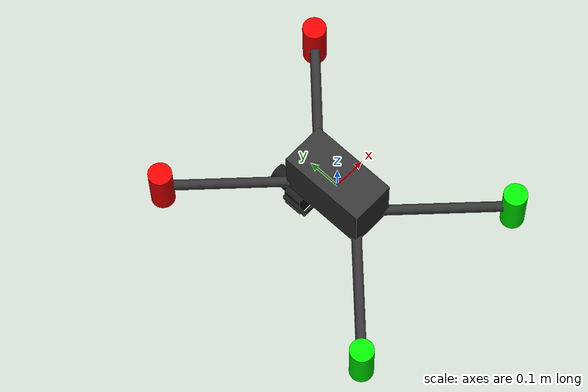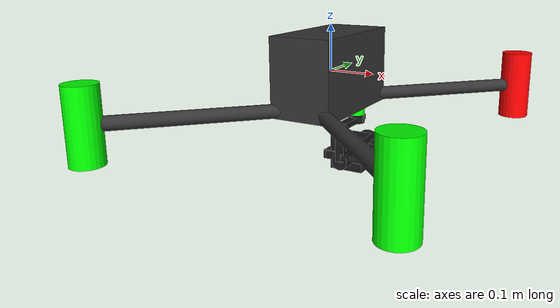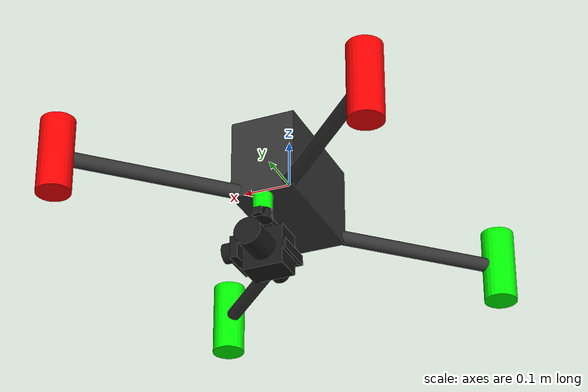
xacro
<?xml version="1.0"?>
<robot name="drone" xmlns:xacro="http://ros.org/wiki/xacro">

  <xacro:property name="namespace" value="mavdrone" />

  <!-- Define robot constants -->
  <xacro:property name="arm_length" value="0.45" />
  <xacro:property name="arm_radius" value="0.015" />
  <xacro:property name="prop_radius" value="0.035" />

  <xacro:property name="base_length" value="0.27" />
  <xacro:property name="base_width" value="0.135" />
  <xacro:property name="base_height" value="0.17" />

  <xacro:property name="skyport_mount_radius" value="0.02" />
  <xacro:property name="skyport_mount_length" value="0.036" />

  <!-- Robot Base -->
  <link name="base_link">
    <visual>
      <origin xyz="0 0 0" rpy="0 0 ${pi/2}" />
      <geometry>
        <box size="${base_length} ${base_width} ${base_height}" />
      </geometry>
      <material name="base">
        <color rgba="0.2 0.2 0.2 1" />
      </material>
    </visual>

    <collision>
      <origin xyz="0 0 0" rpy="0 0 ${pi/2}" />
      <geometry>
        <box size="${base_length} ${base_width} ${base_height}" />
      </geometry>
    </collision>
  </link>

  <!-- Arms -->
  <xacro:macro name="arm" params="prefix color arm_angle offset">
    <joint name="${prefix}_joint" type="fixed">
      <parent link="base_link" />
      <child link="${prefix}_link" />
      <origin xyz="0.0 ${offset} ${arm_radius-(base_height/2)}" rpy="0 0 ${arm_angle+pi/4}" />
    </joint>

    <link name="${prefix}_link">
      <visual>
        <origin xyz="${arm_length/2} 0 0" rpy="${pi/2} 0 ${pi/2}" />
        <geometry>
          <cylinder radius="${arm_radius}" length="${arm_length}" />
        </geometry>

        <material name="black">
          <color rgba="0.2 0.2 0.2 1" />
        </material>
      </visual>

      <collision>
        <origin xyz="${arm_length/2} 0 0" rpy="${pi/2} 0 ${pi/2}" />
        <geometry>
          <cylinder radius="${arm_radius}" length="${arm_length}" />
        </geometry>
      </collision>
    </link>

    <joint name="${prefix}_motor_joint" type="fixed">
      <parent link="${prefix}_link" />
      <child link="${prefix}_motor_link" />
      <origin xyz="${arm_length} 0.0 0.0" rpy="0 0 0" />
    </joint>

    <link name="${prefix}_motor_link">
      <visual>
        <origin xyz="0 0 0" rpy="0 0 0" />
        <geometry>
          <cylinder radius="${prop_radius}" length="0.16" />
        </geometry>
        <material name="${prefix}_color">
          <color rgba="${color}" />
        </material>
      </visual>
      <collision>
        <origin xyz="0 0 0" rpy="0 0 0" />
        <geometry>
          <cylinder radius="${prop_radius}" length="0.16" />
        </geometry>
      </collision>
    </link>
  </xacro:macro>

  <xacro:arm prefix="arm1" color="1.0 0.0 0.0 1.0" arm_angle="0" offset="0.07" />
  <xacro:arm prefix="arm3" color="1.0 0.0 0.0 1.0" arm_angle="${pi/2}" offset="0.07" />
  <xacro:arm prefix="arm4" color="0.0 1.0 0.0 1.0" arm_angle="${pi}" offset="-0.07" />
  <xacro:arm prefix="arm2" color="0.0 1.0 0.0 1.0" arm_angle="${3*pi/2}" offset="-0.07" />

  <link name="skyport_mount_link">
    <visual>
      <origin xyz="0 0 0" rpy="0 0 0" />
      <geometry>
        <cylinder radius="${skyport_mount_radius}" length="${skyport_mount_length}" />
      </geometry>
      <material name="skyport_mount_color">
        <color rgba="0 1 0 1.0" />
      </material>
    </visual>
    <collision>
      <origin xyz="0 0 0" rpy="0 0 0" />
      <geometry>
        <cylinder radius="${skyport_mount_radius}" length="${skyport_mount_length}" />
      </geometry>
    </collision>
  </link>

  <joint name="skyport_mount_joint" type="fixed">
    <parent link="base_link" />
    <child link="skyport_mount_link" />
    <origin xyz="0.0 0.13 ${-(base_height/2)-(skyport_mount_length/2)-0.008}" rpy="0 0 0" />
  </joint>

  <xacro:include filename="$(find m350_description)/urdf/p1.urdf.xacro" />
  <xacro:p1 parent="skyport_mount_link" xyz="0 0 -${skyport_mount_length/2}" rpy="0 0 0" />
</robot>

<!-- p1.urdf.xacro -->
<robot xmlns:xacro="http://www.ros.org/wiki/xacro">
    <xacro:property name="motor_radius" value="0.02" />
    <xacro:property name="skyport_length" value="0.018" />
    <xacro:property name="motor_length" value="0.02" />
    <xacro:property name="motor_length_short" value="0.016" />
    <xacro:property name="frame_1_length" value="0.120" />
    <xacro:property name="frame_1_width" value="0.02" />
    <xacro:property name="frame_1_height" value="0.014" />
    <xacro:property name="frame_2_length" value="0.09" />
    <xacro:property name="frame_3_length" value="0.122" />
    <xacro:property name="frame_3_width" value="0.006" />
    <xacro:property name="frame_3_height" value="0.02" />
    <xacro:property name="frame_4_length" value="0.085" />
    <xacro:property name="square_motor_size" value="0.046" />
    <xacro:property name="camera_sensor_width" value="0.084" />
    <xacro:property name="camera_sensor_height" value="0.084" />
    <xacro:property name="camera_sensor_length" value="0.06" />
    <xacro:property name="camera_lens_radius" value="0.028" />
    <xacro:property name="camera_lens_length" value="0.07" />

    <material name="camera_body_color">
        <color rgba="0.1 0.1 0.1 1" />
    </material>

    <xacro:macro name="p1" params="parent xyz rpy">
        <link name="skyport_link" />

        <joint name="skyport_joint" type="fixed">
            <origin xyz="${xyz}" rpy="${rpy}" />
            <parent link="${parent}" />
            <child link="skyport_link" />
        </joint>

        <link name="yaw_motor_link">
            <visual>
                <origin xyz="0 0 ${skyport_length/2}" rpy="0 0 0" />
                <geometry>
                    <cylinder radius="${motor_radius}" length="${skyport_length}" />
                </geometry>
                <material name="camera_body_color" />
            </visual>

        </link>

        <joint name="yaw_motor_joint" type="fixed">
            <origin xyz="0 0 -${skyport_length}" rpy="0 0 0" />
            <parent link="skyport_link" />
            <child link="yaw_motor_link" />
        </joint>

        <link name="yaw_link">
            <visual>
                <origin xyz="0 0 -${motor_length/2}" rpy="0 0 0" />
                <geometry>
                    <cylinder radius="${motor_radius}" length="${motor_length}" />
                </geometry>
                <material name="camera_body_color" />
            </visual>
        </link>

        <joint name="yaw_joint" type="continuous">
            <parent link="skyport_link" />
            <child link="yaw_link" />
            <axis xyz="0 0 -1" />
        </joint>

        <link name="frame_1">
            <visual>
                <origin xyz="0 0 0" rpy="0 0 0" />
                <geometry>
                    <box size="${frame_1_width} ${frame_1_length} ${frame_1_height}" />
                </geometry>
                <material name="camera_body_color" />
            </visual>
        </link>

        <joint name="frame_1_joint" type="fixed">
            <parent link="yaw_link" />
            <child link="frame_1" />
            <origin xyz="0 -${(frame_1_length/2)-0.03} -${motor_length-(frame_1_height/2)-0.001}"
                rpy="0 0 0" />
        </joint>

        <link name="frame_2">
            <visual>
                <origin xyz="0 0 0" rpy="0 0 0" />
                <geometry>
                    <box size="${frame_1_width} ${frame_1_height} ${frame_2_length}" />
                </geometry>
                <material name="camera_body_color" />
            </visual>
        </link>

        <joint name="frame_2_joint" type="fixed">
            <parent link="frame_1" />
            <child link="frame_2" />
            <origin
                xyz="0 -${(frame_1_length/2)-(frame_1_height/2)} ${(frame_1_height/2)-(frame_2_length/2)}"
                rpy="0 0 0" />
        </joint>

        <link name="roll_motor_link">
            <visual>
                <origin xyz="0 -${motor_length/2} 0" rpy="${pi/2} 0 0" />
                <geometry>
                    <cylinder radius="${motor_radius}" length="${motor_length}" />
                </geometry>
                <material name="camera_body_color" />
            </visual>
        </link>

        <joint name="roll_motor_joint" type="fixed">
            <parent link="frame_2" />
            <child link="roll_motor_link" />
            <origin xyz="0 ${motor_length-(frame_1_height/2)} -${frame_2_length/2}"
                rpy="0 0 0" />
        </joint>

        <link name="roll_link">
            <visual>
                <origin xyz="0 ${motor_length/2} 0" rpy="${pi/2} 0 0" />
                <geometry>
                    <cylinder radius="${motor_radius}" length="${motor_length}" />
                </geometry>
                <material name="camera_body_color" />
            </visual>
        </link>

        <joint name="roll_joint" type="continuous">
            <parent link="roll_motor_link" />
            <child link="roll_link" />
            <axis xyz="0 0 1" />
        </joint>

        <link name="frame_3">
            <visual>
                <origin xyz="0 0 0" rpy="0 0 0" />
                <geometry>
                    <box size="${frame_3_length} ${frame_3_width} ${frame_3_height}" />
                </geometry>
                <material name="camera_body_color" />
            </visual>
        </link>

        <joint name="frame_3_joint" type="fixed">
            <parent link="roll_link" />
            <child link="frame_3" />
            <origin xyz="0 ${(motor_length-(frame_3_width/2))} 0"
                rpy="0 0 0" />
        </joint>

        <link name="frame_4">
            <visual>
                <origin xyz="0 0 0" rpy="0 0 0" />
                <geometry>
                    <box size="${frame_3_width} ${frame_4_length} ${frame_3_height}" />
                </geometry>
                <material name="camera_body_color" />
            </visual>
        </link>

        <joint name="frame_4_joint" type="fixed">
            <parent link="frame_3" />
            <child link="frame_4" />
            <origin
                xyz="${(frame_3_length/2)-(frame_3_width/2)} ${(frame_4_length/2)-(frame_3_width/2)} 0"
                rpy="0 0 0" />
        </joint>

        <link name="frame_5">
            <visual>
                <origin xyz="0 0 0" rpy="0 0 0" />
                <geometry>
                    <box size="${frame_3_width} ${frame_4_length} ${frame_3_height}" />
                </geometry>
                <material name="camera_body_color" />
            </visual>
        </link>

        <joint name="frame_5_joint" type="fixed">
            <parent link="frame_3" />
            <child link="frame_5" />
            <origin
                xyz="-${(frame_3_length/2)-(frame_3_width/2)} ${(frame_4_length/2)-(frame_3_width/2)} 0"
                rpy="0 0 0" />
        </joint>

        <link name="pitch_motor_link">
            <visual>
                <origin xyz="${motor_length/2} 0 0" rpy="0 ${pi/2} 0" />
                <geometry>
                    <cylinder radius="${motor_radius}" length="${motor_length}" />
                </geometry>
                <material name="camera_body_color" />
            </visual>
        </link>

        <joint name="pitch_motor_link" type="fixed">
            <parent link="frame_4" />
            <child link="pitch_motor_link" />
            <origin xyz="-${motor_length_short-(frame_3_width/2)} ${frame_4_length/2} 0"
                rpy="0 0 0" />
        </joint>

        <link name="pitch_link">
            <visual>
                <origin xyz="-${motor_length_short/2} 0 0" rpy="0 ${pi/2} 0" />
                <geometry>
                    <box size="${square_motor_size} ${square_motor_size} ${motor_length_short}" />
                </geometry>
                <material name="camera_body_color" />
            </visual>
        </link>

        <joint name="pitch_joint" type="continuous">
            <parent link="pitch_motor_link" />
            <child link="pitch_link" />
            <axis xyz="0 1 0" />
        </joint>

        <link name="camera_sensor_link">
            <visual>
                <origin xyz="0 0 0" rpy="0 0 0" />
                <geometry>
                    <box
                        size="${camera_sensor_width} ${camera_sensor_length} ${camera_sensor_height}" />
                </geometry>
                <material name="camera_body_color" />
            </visual>
        </link>

        <joint name="camera_sensor_joint" type="fixed">
            <parent link="pitch_link" />
            <child link="camera_sensor_link" />
            <origin
                xyz="-${(camera_sensor_width/2)+motor_length_short} -${camera_sensor_length/2} 0"
                rpy="0 0 0" />
        </joint>

        <link name="camera_lens_link">
            <visual>
                <origin xyz="0 0 0" rpy="${pi/2} 0 0" />
                <geometry>
                    <cylinder radius="${camera_lens_radius}" length="${camera_lens_length}" />
                </geometry>
                <material name="camera_body_color" />
            </visual>
        </link>

        <joint name="camera_lens_joint" type="fixed">
            <parent link="camera_sensor_link" />
            <child link="camera_lens_link" />
            <origin xyz="0 ${(camera_sensor_length/2)+(camera_lens_length/2)} 0" rpy="0 0 0" />
        </joint>

        <link name="camera_optical_link" />

        <joint name="camera_optical_joint" type="fixed">
            <parent link="camera_lens_link" />
            <child link="camera_optical_link" />
            <origin xyz="0 -${camera_lens_length/2} 0" rpy="-${pi/2} 0 0" />
        </joint>

    </xacro:macro>
</robot>
